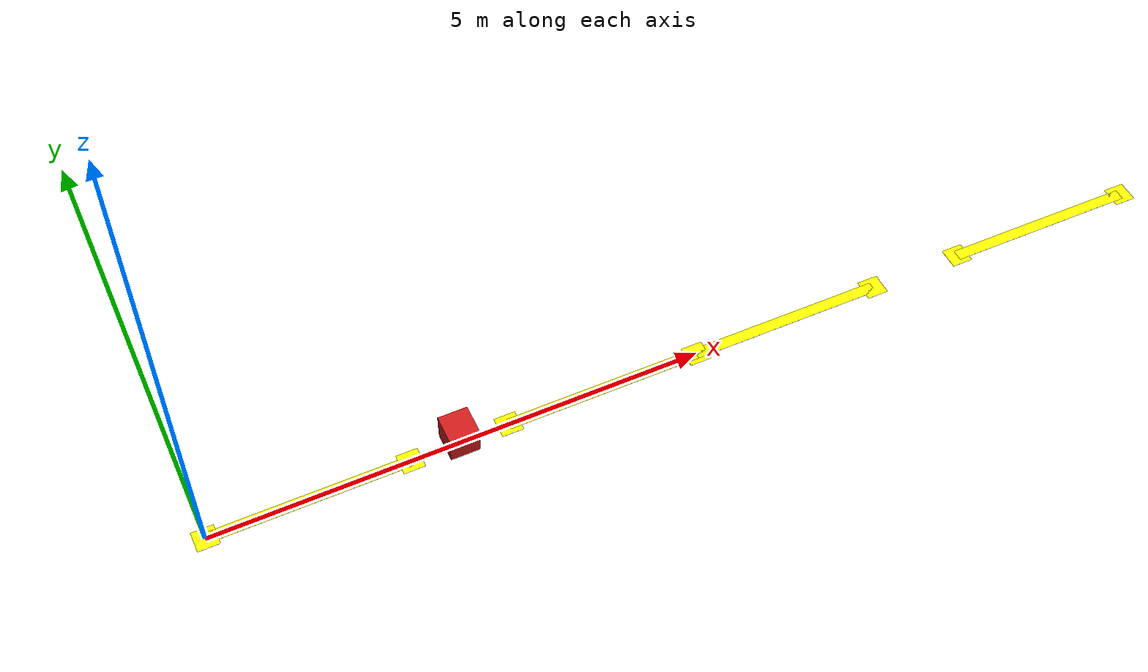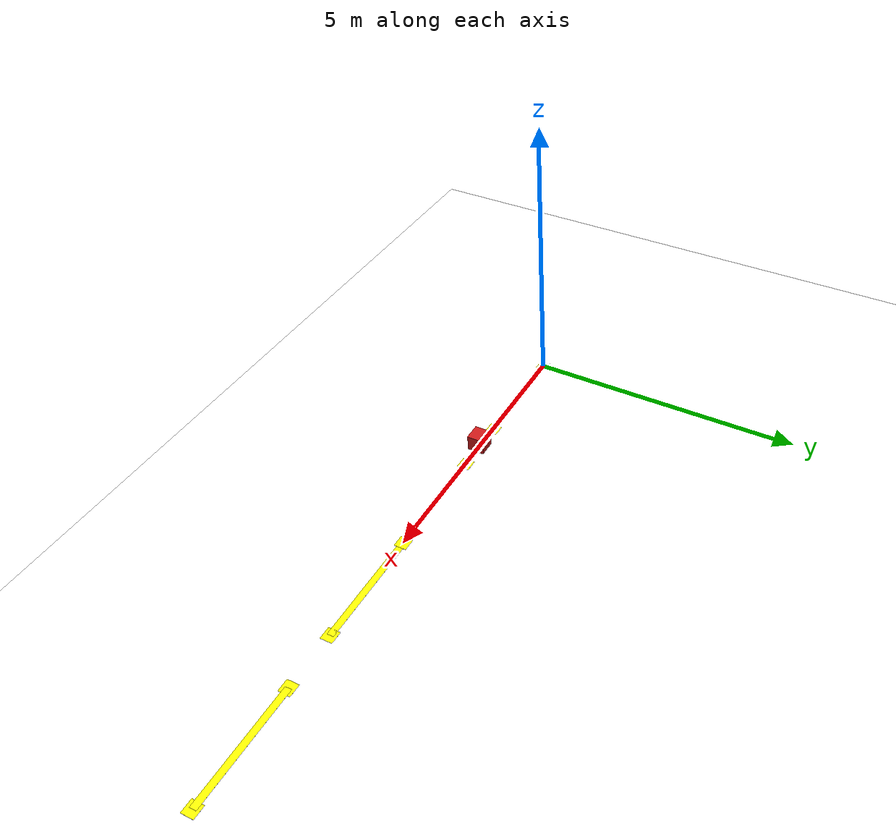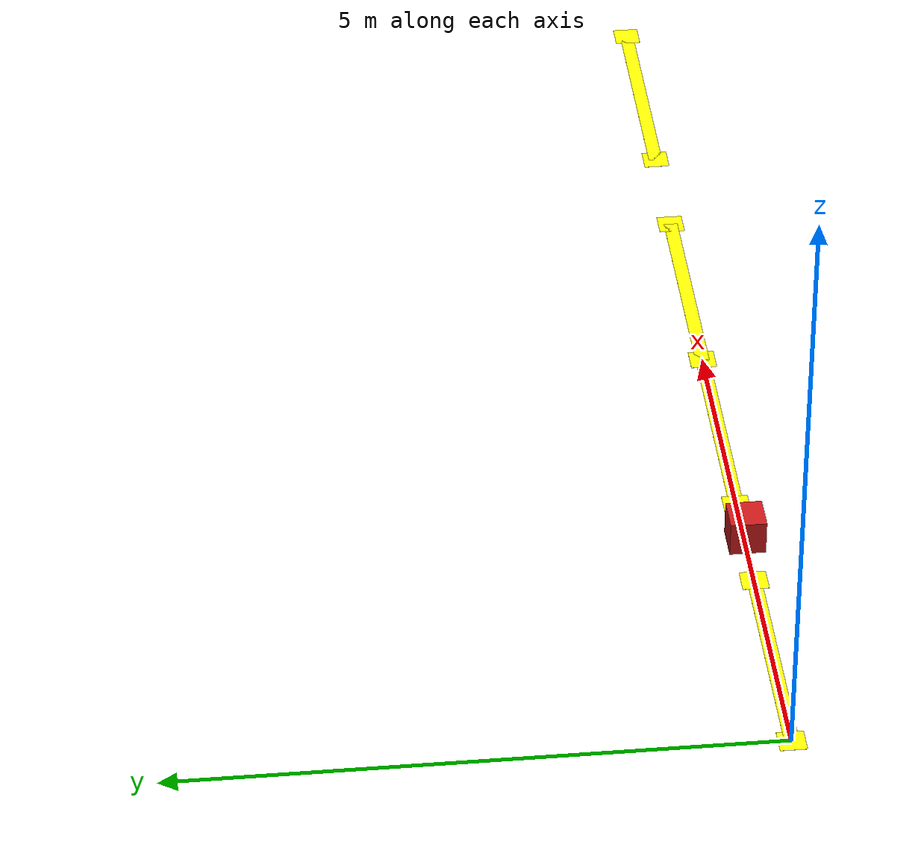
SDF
<?xml version="1.0" ?>
<sdf version="1.6">
  <world name="line_world">

    <light name="sun" type="directional">
      <cast_shadows>true</cast_shadows>
      <pose>0 0 10 0 0 0</pose>
      <diffuse>1 1 1 1</diffuse>
      <specular>0.1 0.1 0.1 1</specular>
      <direction>-0.5 0.5 -1</direction>
    </light>

    <gravity>0 0 -9.8</gravity>

    <!-- White ground plane -->
    <model name="ground_plane">
      <static>true</static>
      <link name="link">
        <collision name="collision">
          <geometry>
            <plane><normal>0 0 1</normal><size>20 20</size></plane>
          </geometry>
          <surface>
            <friction><ode><mu>100</mu><mu2>50</mu2></ode></friction>
          </surface>
        </collision>
        <visual name="visual">
          <geometry>
            <plane><normal>0 0 1</normal><size>20 20</size></plane>
          </geometry>
          <material>
            <ambient>1 1 1 1</ambient>
            <diffuse>1 1 1 1</diffuse>
            <specular>0 0 0 1</specular>
          </material>
        </visual>
      </link>
    </model>

    <!-- Line segment 1: x=0 to x=2 -->
    <model name="line_seg1">
      <static>true</static>
      <pose>1 0 0.001 0 0 0</pose>
      <link name="link">
        <visual name="visual">
          <geometry><box><size>2.0 0.12 0.001</size></box></geometry>
          <material>
            <ambient>1 1 0 1</ambient>
            <diffuse>1 1 0 1</diffuse>
          </material>
        </visual>
        <collision name="collision">
          <geometry><box><size>2.0 0.12 0.001</size></box></geometry>
        </collision>
      </link>
    </model>

    <!-- GAP from x=2 to x=3 (no line here) -->

    <!-- Line segment 2: x=3 to x=5 -->
    <model name="line_seg2">
      <static>true</static>
      <pose>4 0 0.001 0 0 0</pose>
      <link name="link">
        <visual name="visual">
          <geometry><box><size>2.0 0.12 0.001</size></box></geometry>
          <material>
            <ambient>1 1 0 1</ambient>
            <diffuse>1 1 0 1</diffuse>
          </material>
        </visual>
        <collision name="collision">
          <geometry><box><size>2.0 0.12 0.001</size></box></geometry>
        </collision>
      </link>
    </model>

    <!-- Obstacle box sitting in the gap area -->
    <model name="obstacle_box">
      <static>true</static>
      <pose>2.5 0 0.15 0 0 0</pose>
      <link name="link">
        <collision name="collision">
          <geometry><box><size>0.3 0.3 0.3</size></box></geometry>
        </collision>
        <visual name="visual">
          <geometry><box><size>0.3 0.3 0.3</size></box></geometry>
          <material>
            <ambient>0.8 0.1 0.1 1</ambient>
            <diffuse>0.8 0.1 0.1 1</diffuse>
          </material>
        </visual>
      </link>
    </model>

    <!-- Line segment 3: x=5 to x=7 -->
    <model name="line_seg3">
      <static>true</static>
      <pose>6 0 0.001 0 0 0</pose>
      <link name="link">
        <visual name="visual">
          <geometry><box><size>2.0 0.12 0.001</size></box></geometry>
          <material>
            <ambient>1 1 0 1</ambient>
            <diffuse>1 1 0 1</diffuse>
          </material>
        </visual>
        <collision name="collision">
          <geometry><box><size>2.0 0.12 0.001</size></box></geometry>
        </collision>
      </link>
    </model>

    <!-- GAP from x=7 to x=8 -->

    <!-- Line segment 4: x=8 to x=10 -->
    <model name="line_seg4">
      <static>true</static>
      <pose>9 0 0.001 0 0 0</pose>
      <link name="link">
        <visual name="visual">
          <geometry><box><size>2.0 0.12 0.001</size></box></geometry>
          <material>
            <ambient>1 1 0 1</ambient>
            <diffuse>1 1 0 1</diffuse>
          </material>
        </visual>
        <collision name="collision">
          <geometry><box><size>2.0 0.12 0.001</size></box></geometry>
        </collision>
      </link>
    </model>

    <!-- Large square points at line edges -->
    <model name="line_edge_p0">
      <static>true</static>
      <pose>0.0 0 0.001 0 0 0</pose>
      <link name="link">
        <visual name="visual">
          <geometry><box><size>0.22 0.22 0.001</size></box></geometry>
          <material><ambient>1 1 0 1</ambient><diffuse>1 1 0 1</diffuse></material>
        </visual>
        <collision name="collision"><geometry><box><size>0.22 0.22 0.001</size></box></geometry></collision>
      </link>
    </model>
    <model name="line_edge_p2">
      <static>true</static>
      <pose>2.0 0 0.001 0 0 0</pose>
      <link name="link">
        <visual name="visual">
          <geometry><box><size>0.22 0.22 0.001</size></box></geometry>
          <material><ambient>1 1 0 1</ambient><diffuse>1 1 0 1</diffuse></material>
        </visual>
        <collision name="collision"><geometry><box><size>0.22 0.22 0.001</size></box></geometry></collision>
      </link>
    </model>
    <model name="line_edge_p3">
      <static>true</static>
      <pose>3.0 0 0.001 0 0 0</pose>
      <link name="link">
        <visual name="visual">
          <geometry><box><size>0.22 0.22 0.001</size></box></geometry>
          <material><ambient>1 1 0 1</ambient><diffuse>1 1 0 1</diffuse></material>
        </visual>
        <collision name="collision"><geometry><box><size>0.22 0.22 0.001</size></box></geometry></collision>
      </link>
    </model>
    <model name="line_edge_p5">
      <static>true</static>
      <pose>5.0 0 0.001 0 0 0</pose>
      <link name="link">
        <visual name="visual">
          <geometry><box><size>0.22 0.22 0.001</size></box></geometry>
          <material><ambient>1 1 0 1</ambient><diffuse>1 1 0 1</diffuse></material>
        </visual>
        <collision name="collision"><geometry><box><size>0.22 0.22 0.001</size></box></geometry></collision>
      </link>
    </model>
    <model name="line_edge_p7">
      <static>true</static>
      <pose>7.0 0 0.001 0 0 0</pose>
      <link name="link">
        <visual name="visual">
          <geometry><box><size>0.22 0.22 0.001</size></box></geometry>
          <material><ambient>1 1 0 1</ambient><diffuse>1 1 0 1</diffuse></material>
        </visual>
        <collision name="collision"><geometry><box><size>0.22 0.22 0.001</size></box></geometry></collision>
      </link>
    </model>
    <model name="line_edge_p8">
      <static>true</static>
      <pose>8.0 0 0.001 0 0 0</pose>
      <link name="link">
        <visual name="visual">
          <geometry><box><size>0.22 0.22 0.001</size></box></geometry>
          <material><ambient>1 1 0 1</ambient><diffuse>1 1 0 1</diffuse></material>
        </visual>
        <collision name="collision"><geometry><box><size>0.22 0.22 0.001</size></box></geometry></collision>
      </link>
    </model>
    <model name="line_edge_p10">
      <static>true</static>
      <pose>10.0 0 0.001 0 0 0</pose>
      <link name="link">
        <visual name="visual">
          <geometry><box><size>0.22 0.22 0.001</size></box></geometry>
          <material><ambient>1 1 0 1</ambient><diffuse>1 1 0 1</diffuse></material>
        </visual>
        <collision name="collision"><geometry><box><size>0.22 0.22 0.001</size></box></geometry></collision>
      </link>
    </model>

  </world>
</sdf>
